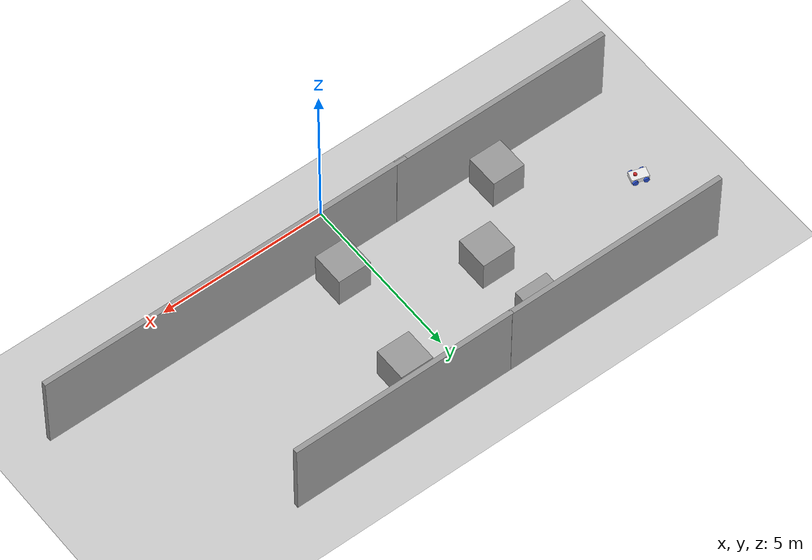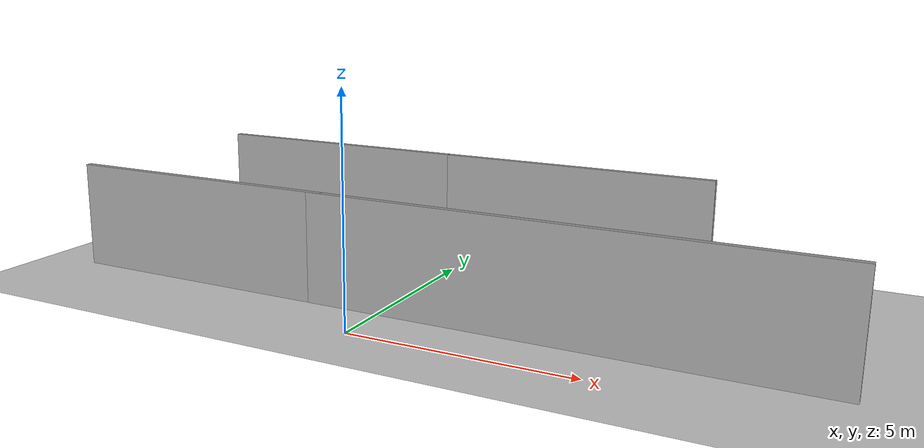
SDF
<sdf version="1.7">
 <world name="default">
  <light name="sun" type="directional">
   <pose>0 0 10 0 -0 0</pose>
   <diffuse>0.8 0.8 0.8 1</diffuse>
   <specular>0.2 0.2 0.2 1</specular>
   <attenuation>
    <range>1000</range>
    <constant>0.9</constant>
    <linear>0.01</linear>
    <quadratic>0.001</quadratic>
   </attenuation>
   <direction>-0.5 0.1 -0.9</direction>
   <spot><inner_angle>0</inner_angle><outer_angle>0</outer_angle><falloff>0</falloff></spot>
  </light>
  <model name="ground_plane">
   <static>1</static>
   <link name="link">
    <collision name="collision">
     <geometry><plane><normal>0 0 1</normal><size>100 100</size></plane></geometry>
     <surface><friction><ode><mu>100</mu><mu2>50</mu2></ode></friction></surface>
    </collision>
    <visual name="visual">
     <cast_shadows>0</cast_shadows>
     <geometry><plane><normal>0 0 1</normal><size>100 100</size></plane></geometry>
     <material>
      <script><uri>file://media/materials/scripts/gazebo.material</uri><name>Gazebo/Grey</name></script>
     </material>
    </visual>
   </link>
  </model>
  <gravity>0 0 -9.8</gravity>
  <magnetic_field>6e-06 2.3e-05 -4.2e-05</magnetic_field>
  <atmosphere type="adiabatic"/>
  <physics type="ode">
   <max_step_size>0.001</max_step_size>
   <real_time_factor>1</real_time_factor>
   <real_time_update_rate>1000</real_time_update_rate>
  </physics>
  <scene><ambient>0.4 0.4 0.4 1</ambient><background>0.7 0.7 0.7 1</background><shadows>1</shadows></scene>
  <audio><device>default</device></audio>
  <spherical_coordinates>
   <surface_model>EARTH_WGS84</surface_model>
   <latitude_deg>0</latitude_deg>
   <longitude_deg>0</longitude_deg>
   <elevation>0</elevation>
   <heading_deg>0</heading_deg>
  </spherical_coordinates>
  <model name="ackerman3">
   <link name="base_link">
    <inertial>
     <pose>0.016667 0 0.018333 0 -0 0</pose>
     <mass>0.6</mass>
     <inertia>
      <ixx>0.00577167</ixx>
      <ixy>0</ixy>
      <ixz>-0.000916667</ixz>
      <iyy>0.0132717</iyy>
      <iyz>0</iyz>
      <izz>0.015125</izz>
     </inertia>
    </inertial>
    <collision name="base_link_fixed_joint_lump__chassis_collision">
     <geometry><box><size>0.5 0.3 0.15</size></box></geometry>
    </collision>
    <collision name="base_link_fixed_joint_lump__laser_frame_collision_1">
     <pose>0.1 0 0.11 0 -0 0</pose>
     <geometry><cylinder><length>0.04</length><radius>0.05</radius></cylinder></geometry>
    </collision>
    <visual name="base_link_fixed_joint_lump__chassis_visual">
     <geometry><box><size>0.5 0.3 0.15</size></box></geometry>
     <material>
      <script><name>Gazebo/White</name><uri>file://media/materials/scripts/gazebo.material</uri></script>
     </material>
    </visual>
    <visual name="base_link_fixed_joint_lump__laser_frame_visual_1">
     <pose>0.1 0 0.11 0 -0 0</pose>
     <geometry><cylinder><length>0.04</length><radius>0.05</radius></cylinder></geometry>
     <material>
      <script><name>Gazebo/Red</name><uri>file://media/materials/scripts/gazebo.material</uri></script>
     </material>
    </visual>
    <sensor name="laser" type="ray">
     <visualize>1</visualize>
     <update_rate>10</update_rate>
     <ray>
      <scan>
       <horizontal>
        <samples>360</samples>
        <resolution>1</resolution>
        <min_angle>-3.14</min_angle>
        <max_angle>3.14</max_angle>
       </horizontal>
       <vertical><samples>1</samples><min_angle>0</min_angle><max_angle>0</max_angle></vertical>
      </scan>
      <range><min>0.3</min><max>12</max><resolution>0.01</resolution></range>
     </ray>
     <plugin name="laser_controller" filename="libgazebo_ros_ray_sensor.so">
      <ros><remapping>~/out:=scan</remapping></ros>
      <output_type>sensor_msgs/LaserScan</output_type>
      <frame_name>laser_frame</frame_name>
     </plugin>
     <pose>0.1 0 0.11 0 -0 0</pose>
    </sensor>
   </link>
   <joint name="left_steering_joint" type="revolute">
    <pose relative_to="base_link">0.154 0.15 -0.035 0 -0 0</pose>
    <parent>base_link</parent>
    <child>left_steering_link</child>
    <axis>
     <xyz>0 0 1</xyz>
     <limit><lower>-0.41</lower><upper>0.41</upper><effort>100</effort><velocity>0.5</velocity></limit>
     <dynamics><spring_reference>0</spring_reference><spring_stiffness>0</spring_stiffness></dynamics>
    </axis>
   </joint>
   <link name="left_steering_link">
    <pose relative_to="left_steering_joint">0 0 0 0 -0 0</pose>
    <inertial>
     <pose>0 0 0 1.5708 -0 0</pose>
     <mass>0.1</mass>
     <inertia>
      <ixx>2.64333e-05</ixx>
      <ixy>0</ixy>
      <ixz>0</ixz>
      <iyy>2.64333e-05</iyy>
      <iyz>0</iyz>
      <izz>5.12e-05</izz>
     </inertia>
    </inertial>
    <collision name="left_steering_link_collision">
     <pose>0 0 0 1.5708 -0 0</pose>
     <geometry><sphere><radius>0.032</radius></sphere></geometry>
     <surface><friction><ode><mu>0.5</mu><mu2>0.5</mu2></ode></friction></surface>
    </collision>
    <visual name="left_steering_link_visual">
     <pose>0 0 0 1.5708 -0 0</pose>
     <geometry><cylinder><length>0.01</length><radius>0.032</radius></cylinder></geometry>
     <material>
      <script><name>Gazebo/Blue</name><uri>file://media/materials/scripts/gazebo.material</uri></script>
     </material>
    </visual>
   </link>
   <joint name="front_left_wheel_joint" type="revolute">
    <pose relative_to="left_steering_link">0 0.025 0 0 -0 0</pose>
    <parent>left_steering_link</parent>
    <child>front_left_wheel</child>
    <axis>
     <xyz>0 1 0</xyz>
     <limit><lower>-1e+16</lower><upper>1e+16</upper></limit>
     <dynamics><spring_reference>0</spring_reference><spring_stiffness>0</spring_stiffness></dynamics>
    </axis>
   </joint>
   <link name="front_left_wheel">
    <pose relative_to="front_left_wheel_joint">0 0 0 0 -0 0</pose>
    <inertial>
     <pose>0 0 0 1.5708 -0 0</pose>
     <mass>0.1</mass>
     <inertia>
      <ixx>0.000180833</ixx>
      <ixy>0</ixy>
      <ixz>0</ixz>
      <iyy>0.000180833</iyy>
      <iyz>0</iyz>
      <izz>0.00032</izz>
     </inertia>
    </inertial>
    <collision name="front_left_wheel_collision">
     <pose>0 0 0 1.5708 -0 0</pose>
     <geometry><sphere><radius>0.08</radius></sphere></geometry>
     <surface><friction><ode><mu>0.5</mu><mu2>0.5</mu2></ode></friction></surface>
    </collision>
    <visual name="front_left_wheel_visual">
     <pose>0 0 0 1.5708 -0 0</pose>
     <geometry><cylinder><length>0.05</length><radius>0.08</radius></cylinder></geometry>
     <material>
      <script><name>Gazebo/Blue</name><uri>file://media/materials/scripts/gazebo.material</uri></script>
     </material>
    </visual>
   </link>
   <joint name="rear_left_wheel_joint" type="revolute">
    <pose relative_to="base_link">-0.154 0.175 -0.035 0 -0 0</pose>
    <parent>base_link</parent>
    <child>rear_left_wheel</child>
    <axis>
     <xyz>0 1 0</xyz>
     <limit><lower>-1e+16</lower><upper>1e+16</upper></limit>
     <dynamics><spring_reference>0</spring_reference><spring_stiffness>0</spring_stiffness></dynamics>
    </axis>
   </joint>
   <link name="rear_left_wheel">
    <pose relative_to="rear_left_wheel_joint">0 0 0 0 -0 0</pose>
    <inertial>
     <pose>0 0 0 1.5708 -0 0</pose>
     <mass>0.1</mass>
     <inertia>
      <ixx>0.000180833</ixx>
      <ixy>0</ixy>
      <ixz>0</ixz>
      <iyy>0.000180833</iyy>
      <iyz>0</iyz>
      <izz>0.00032</izz>
     </inertia>
    </inertial>
    <collision name="rear_left_wheel_collision">
     <pose>0 0 0 1.5708 -0 0</pose>
     <geometry><sphere><radius>0.08</radius></sphere></geometry>
     <surface><friction><ode><mu>0.5</mu><mu2>0.5</mu2></ode></friction></surface>
    </collision>
    <visual name="rear_left_wheel_visual">
     <pose>0 0 0 1.5708 -0 0</pose>
     <geometry><cylinder><length>0.05</length><radius>0.08</radius></cylinder></geometry>
     <material>
      <script><name>Gazebo/Blue</name><uri>file://media/materials/scripts/gazebo.material</uri></script>
     </material>
    </visual>
   </link>
   <joint name="rear_right_wheel_joint" type="revolute">
    <pose relative_to="base_link">-0.154 -0.175 -0.035 0 -0 0</pose>
    <parent>base_link</parent>
    <child>rear_right_wheel</child>
    <axis>
     <xyz>0 1 0</xyz>
     <limit><lower>-1e+16</lower><upper>1e+16</upper></limit>
     <dynamics><spring_reference>0</spring_reference><spring_stiffness>0</spring_stiffness></dynamics>
    </axis>
   </joint>
   <link name="rear_right_wheel">
    <pose relative_to="rear_right_wheel_joint">0 0 0 0 -0 0</pose>
    <inertial>
     <pose>0 0 0 1.5708 -0 0</pose>
     <mass>0.1</mass>
     <inertia>
      <ixx>0.000180833</ixx>
      <ixy>0</ixy>
      <ixz>0</ixz>
      <iyy>0.000180833</iyy>
      <iyz>0</iyz>
      <izz>0.00032</izz>
     </inertia>
    </inertial>
    <collision name="rear_right_wheel_collision">
     <pose>0 0 0 1.5708 -0 0</pose>
     <geometry><sphere><radius>0.08</radius></sphere></geometry>
     <surface><friction><ode><mu>0.5</mu><mu2>0.5</mu2></ode></friction></surface>
    </collision>
    <visual name="rear_right_wheel_visual">
     <pose>0 0 0 1.5708 -0 0</pose>
     <geometry><cylinder><length>0.05</length><radius>0.08</radius></cylinder></geometry>
     <material>
      <script><name>Gazebo/Blue</name><uri>file://media/materials/scripts/gazebo.material</uri></script>
     </material>
    </visual>
   </link>
   <joint name="right_steering_joint" type="revolute">
    <pose relative_to="base_link">0.154 -0.15 -0.035 0 -0 0</pose>
    <parent>base_link</parent>
    <child>right_steering_link</child>
    <axis>
     <xyz>0 0 1</xyz>
     <limit><lower>-0.41</lower><upper>0.41</upper><effort>100</effort><velocity>0.5</velocity></limit>
     <dynamics><spring_reference>0</spring_reference><spring_stiffness>0</spring_stiffness></dynamics>
    </axis>
   </joint>
   <link name="right_steering_link">
    <pose relative_to="right_steering_joint">0 0 0 0 -0 0</pose>
    <inertial>
     <pose>0 0 0 1.5708 -0 0</pose>
     <mass>0.1</mass>
     <inertia>
      <ixx>2.64333e-05</ixx>
      <ixy>0</ixy>
      <ixz>0</ixz>
      <iyy>2.64333e-05</iyy>
      <iyz>0</iyz>
      <izz>5.12e-05</izz>
     </inertia>
    </inertial>
    <collision name="right_steering_link_collision">
     <pose>0 0 0 1.5708 -0 0</pose>
     <geometry><sphere><radius>0.032</radius></sphere></geometry>
     <surface><friction><ode><mu>0.5</mu><mu2>0.5</mu2></ode></friction></surface>
    </collision>
    <visual name="right_steering_link_visual">
     <pose>0 0 0 1.5708 -0 0</pose>
     <geometry><cylinder><length>0.01</length><radius>0.032</radius></cylinder></geometry>
     <material>
      <script><name>Gazebo/Blue</name><uri>file://media/materials/scripts/gazebo.material</uri></script>
     </material>
    </visual>
   </link>
   <joint name="front_right_wheel_joint" type="revolute">
    <pose relative_to="right_steering_link">0 -0.025 0 0 -0 0</pose>
    <parent>right_steering_link</parent>
    <child>front_right_wheel</child>
    <axis>
     <xyz>0 1 0</xyz>
     <limit><lower>-1e+16</lower><upper>1e+16</upper></limit>
     <dynamics><spring_reference>0</spring_reference><spring_stiffness>0</spring_stiffness></dynamics>
    </axis>
   </joint>
   <link name="front_right_wheel">
    <pose relative_to="front_right_wheel_joint">0 0 0 0 -0 0</pose>
    <inertial>
     <pose>0 0 0 1.5708 -0 0</pose>
     <mass>0.1</mass>
     <inertia>
      <ixx>0.000180833</ixx>
      <ixy>0</ixy>
      <ixz>0</ixz>
      <iyy>0.000180833</iyy>
      <iyz>0</iyz>
      <izz>0.00032</izz>
     </inertia>
    </inertial>
    <collision name="front_right_wheel_collision">
     <pose>0 0 0 1.5708 -0 0</pose>
     <geometry><sphere><radius>0.08</radius></sphere></geometry>
     <surface><friction><ode><mu>0.5</mu><mu2>0.5</mu2></ode></friction></surface>
    </collision>
    <visual name="front_right_wheel_visual">
     <pose>0 0 0 1.5708 -0 0</pose>
     <geometry><cylinder><length>0.05</length><radius>0.08</radius></cylinder></geometry>
     <material>
      <script><name>Gazebo/Blue</name><uri>file://media/materials/scripts/gazebo.material</uri></script>
     </material>
    </visual>
   </link>
   <static>0</static>
   <plugin name="gazebo_ros2_control" filename="libgazebo_ros2_control.so">
    <parameters>/home/kevin-v/ros2_ws_2401/install/ackerman3/share/ackerman3/config/my_controllers_ack.yaml</parameters>
   </plugin>
   <pose>-7.17202 4.09318 0.114996 -1.8e-05 7e-06 -0.301313</pose>
  </model>
  <model name="Untitled">
   <pose>-4.26025 6.99147 0 0 -0 0</pose>
   <link name="Wall_4">
    <collision name="Wall_4_Collision">
     <geometry><box><size>6.75 0.15 2.5</size></box></geometry>
     <pose>0 0 1.25 0 -0 0</pose>
    </collision>
    <visual name="Wall_4_Visual">
     <pose>0 0 1.25 0 -0 0</pose>
     <geometry><box><size>6.75 0.15 2.5</size></box></geometry>
     <material>
      <script><uri>file://media/materials/scripts/gazebo.material</uri><name>Gazebo/Grey</name></script>
      <ambient>1 1 1 1</ambient>
     </material>
     <meta><layer>0</layer></meta>
    </visual>
    <pose>0 -0.34313 0 0 -0 0</pose>
   </link>
   <static>1</static>
  </model>
  <model name="Untitled_0">
   <pose>-4.76713 1.65598 0 0 -0 0</pose>
   <link name="Wall_4">
    <collision name="Wall_4_Collision">
     <geometry><box><size>6.75 0.15 2.5</size></box></geometry>
     <pose>0 0 1.25 0 -0 0</pose>
    </collision>
    <visual name="Wall_4_Visual">
     <pose>0 0 1.25 0 -0 0</pose>
     <geometry><box><size>6.75 0.15 2.5</size></box></geometry>
     <material>
      <script><uri>file://media/materials/scripts/gazebo.material</uri><name>Gazebo/Grey</name></script>
      <ambient>1 1 1 1</ambient>
     </material>
     <meta><layer>0</layer></meta>
    </visual>
    <pose>0 -0.34313 0 0 -0 0</pose>
   </link>
   <static>1</static>
  </model>
  <model name="unit_box">
   <pose>-2.49668 5.97439 0.499995 0 1e-05 0</pose>
   <link name="link">
    <inertial>
     <mass>1</mass>
     <inertia>
      <ixx>0.166667</ixx>
      <ixy>0</ixy>
      <ixz>0</ixz>
      <iyy>0.166667</iyy>
      <iyz>0</iyz>
      <izz>0.166667</izz>
     </inertia>
    </inertial>
    <collision name="collision"><geometry><box><size>1 1 1</size></box></geometry></collision>
    <visual name="visual">
     <geometry><box><size>1 1 1</size></box></geometry>
     <material>
      <script><name>Gazebo/Grey</name><uri>file://media/materials/scripts/gazebo.material</uri></script>
     </material>
    </visual>
   </link>
  </model>
  <model name="unit_box_0">
   <pose>-4.1432 2.01783 0.499995 -1e-05 -0 -0</pose>
   <link name="link">
    <inertial>
     <mass>1</mass>
     <inertia>
      <ixx>0.166667</ixx>
      <ixy>0</ixy>
      <ixz>0</ixz>
      <iyy>0.166667</iyy>
      <iyz>0</iyz>
      <izz>0.166667</izz>
     </inertia>
    </inertial>
    <collision name="collision"><geometry><box><size>1 1 1</size></box></geometry></collision>
    <visual name="visual">
     <geometry><box><size>1 1 1</size></box></geometry>
     <material>
      <script><name>Gazebo/Grey</name><uri>file://media/materials/scripts/gazebo.material</uri></script>
     </material>
    </visual>
   </link>
  </model>
  <model name="unit_box_1">
   <pose>-2.3634 3.85874 0.499995 0 1e-05 0</pose>
   <link name="link">
    <inertial>
     <mass>1</mass>
     <inertia>
      <ixx>0.166667</ixx>
      <ixy>0</ixy>
      <ixz>0</ixz>
      <iyy>0.166667</iyy>
      <iyz>0</iyz>
      <izz>0.166667</izz>
     </inertia>
    </inertial>
    <collision name="collision"><geometry><box><size>1 1 1</size></box></geometry></collision>
    <visual name="visual">
     <geometry><box><size>1 1 1</size></box></geometry>
     <material>
      <script><name>Gazebo/Grey</name><uri>file://media/materials/scripts/gazebo.material</uri></script>
     </material>
    </visual>
   </link>
  </model>
  <model name="test">
   <pose>3.89718 2.24321 0 0 -0 0</pose>
   <link name="Wall_1">
    <collision name="Wall_1_Collision">
     <geometry><box><size>11.25 0.15 2.5</size></box></geometry>
     <pose>0 0 1.25 0 -0 0</pose>
    </collision>
    <visual name="Wall_1_Visual">
     <pose>0 0 1.25 0 -0 0</pose>
     <geometry><box><size>11.25 0.15 2.5</size></box></geometry>
     <material>
      <script><uri>file://media/materials/scripts/gazebo.material</uri><name>Gazebo/Grey</name></script>
      <ambient>1 1 1 1</ambient>
     </material>
     <meta><layer>0</layer></meta>
    </visual>
    <pose>-0 -0.9325 0 0 -0 0</pose>
   </link>
   <static>1</static>
  </model>
  <model name="Untitled_1">
   <pose>2.4401 6.98666 0 0 -0 0</pose>
   <link name="Wall_4">
    <collision name="Wall_4_Collision">
     <geometry><box><size>6.75 0.15 2.5</size></box></geometry>
     <pose>0 0 1.25 0 -0 0</pose>
    </collision>
    <visual name="Wall_4_Visual">
     <pose>0 0 1.25 0 -0 0</pose>
     <geometry><box><size>6.75 0.15 2.5</size></box></geometry>
     <material>
      <script><uri>file://media/materials/scripts/gazebo.material</uri><name>Gazebo/Grey</name></script>
      <ambient>1 1 1 1</ambient>
     </material>
     <meta><layer>0</layer></meta>
    </visual>
    <pose>0 -0.34313 0 0 -0 0</pose>
   </link>
   <static>1</static>
  </model>
  <model name="unit_box_2">
   <pose>0.822755 2.0206 0.499995 -1e-05 -0 0</pose>
   <link name="link">
    <inertial>
     <mass>1</mass>
     <inertia>
      <ixx>0.166667</ixx>
      <ixy>0</ixy>
      <ixz>0</ixz>
      <iyy>0.166667</iyy>
      <iyz>0</iyz>
      <izz>0.166667</izz>
     </inertia>
    </inertial>
    <collision name="collision"><geometry><box><size>1 1 1</size></box></geometry></collision>
    <visual name="visual">
     <geometry><box><size>1 1 1</size></box></geometry>
     <material>
      <script><name>Gazebo/Grey</name><uri>file://media/materials/scripts/gazebo.material</uri></script>
     </material>
    </visual>
   </link>
  </model>
  <model name="unit_box_3">
   <pose>1.34132 5.26051 0.5 0 -0 0</pose>
   <link name="link">
    <inertial>
     <mass>1</mass>
     <inertia>
      <ixx>0.166667</ixx>
      <ixy>0</ixy>
      <ixz>0</ixz>
      <iyy>0.166667</iyy>
      <iyz>0</iyz>
      <izz>0.166667</izz>
     </inertia>
    </inertial>
    <collision name="collision"><geometry><box><size>1 1 1</size></box></geometry></collision>
    <visual name="visual">
     <geometry><box><size>1 1 1</size></box></geometry>
     <material>
      <script><name>Gazebo/Grey</name><uri>file://media/materials/scripts/gazebo.material</uri></script>
     </material>
    </visual>
   </link>
  </model>
 </world>
</sdf>
